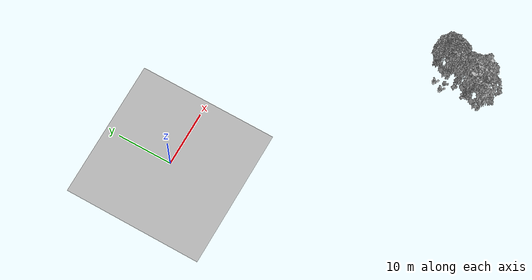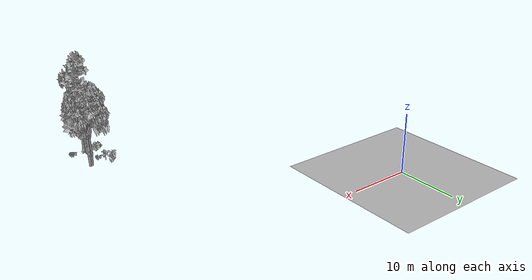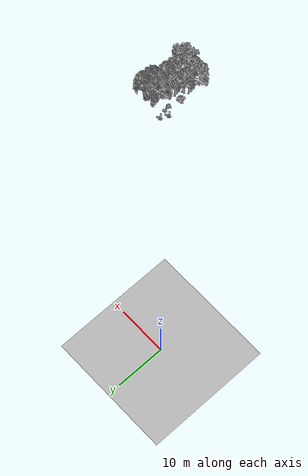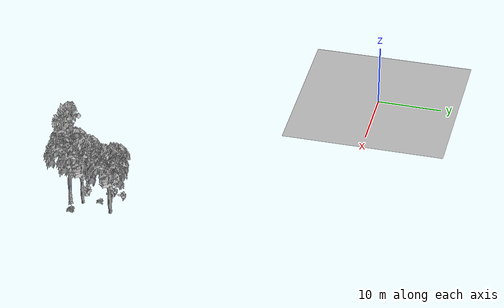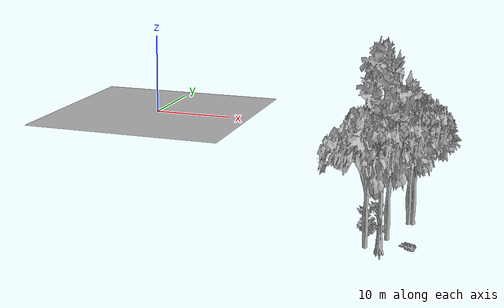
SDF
<sdf version="1.7">
 <world name="default">
  <model name="ground_plane">
   <static>1</static>
   <link name="link">
    <collision name="collision">
     <pose>-50 0 0 0 -0 0</pose>
     <geometry><plane><normal>0 0 1</normal><size>80 80</size></plane></geometry>
     <surface><contact><ode><min_depth>0.01</min_depth><max_vel>0</max_vel></ode></contact></surface>
    </collision>
    <visual name="grass">
     <cast_shadows>0</cast_shadows>
     <geometry>
      <mesh>
       <scale>0.46714285714285714 0.46714285714285714 0.1</scale>
       <uri>file://grass_plane/meshes/grass_plane.dae</uri>
      </mesh>
     </geometry>
    </visual>
   </link>
  </model>
  <model name="Tree 69">
   <static>1</static>
   <pose>36.234945103399 -39.33850696619105 0 1.57079 -0 0</pose>
   <link name="link">
    <collision name="collision">
     <geometry><mesh><scale>3.5 5 3.5</scale><uri>model://tree_9/meshes/tree_9.obj</uri></mesh></geometry>
    </collision>
    <visual name="visual">
     <geometry><mesh><scale>3.5 5 3.5</scale><uri>model://tree_9/meshes/tree_9.obj</uri></mesh></geometry>
    </visual>
   </link>
  </model>
  <model name="Tree 122">
   <static>1</static>
   <pose>37.52260356447661 -32.735231007567776 0 1.57079 -0 0</pose>
   <link name="link">
    <collision name="collision">
     <geometry><mesh><scale>3.5 5 3.5</scale><uri>model://tree_2/meshes/tree_2.obj</uri></mesh></geometry>
    </collision>
    <visual name="visual">
     <geometry><mesh><scale>3.5 5 3.5</scale><uri>model://tree_2/meshes/tree_2.obj</uri></mesh></geometry>
    </visual>
   </link>
  </model>
  <model name="Tree 242">
   <static>1</static>
   <pose>36.43001223709473 -37.31676216103352 0 1.57079 -0 0</pose>
   <link name="link">
    <collision name="collision">
     <geometry><mesh><scale>3.5 5 3.5</scale><uri>model://tree_2/meshes/tree_2.obj</uri></mesh></geometry>
    </collision>
    <visual name="visual">
     <geometry><mesh><scale>3.5 5 3.5</scale><uri>model://tree_2/meshes/tree_2.obj</uri></mesh></geometry>
    </visual>
   </link>
  </model>
  <model name="Tree 402">
   <static>1</static>
   <pose>37.89095227214982 -32.674486583663736 0 1.57079 -0 0</pose>
   <link name="link">
    <collision name="collision">
     <geometry><mesh><scale>3.5 5 3.5</scale><uri>model://tree_2/meshes/tree_2.obj</uri></mesh></geometry>
    </collision>
    <visual name="visual">
     <geometry><mesh><scale>3.5 5 3.5</scale><uri>model://tree_2/meshes/tree_2.obj</uri></mesh></geometry>
    </visual>
   </link>
  </model>
  <model name="Tree 533">
   <static>1</static>
   <pose>35.035863840929366 -39.720797524505016 0 1.57079 -0 0</pose>
   <link name="link">
    <collision name="collision">
     <geometry><mesh><scale>3.5 5 3.5</scale><uri>model://tree_2/meshes/tree_2.obj</uri></mesh></geometry>
    </collision>
    <visual name="visual">
     <geometry><mesh><scale>3.5 5 3.5</scale><uri>model://tree_2/meshes/tree_2.obj</uri></mesh></geometry>
    </visual>
   </link>
  </model>
  <model name="Bush 15">
   <static>1</static>
   <pose>35.03270136747848 -33.294159076901224 0 1.57079 -0 0</pose>
   <link name="link">
    <collision name="collision">
     <geometry><mesh><scale>2 2 2</scale><uri>model://bush_5/meshes/bush_5.obj</uri></mesh></geometry>
     <surface><contact><collide_without_contact>false</collide_without_contact></contact></surface>
    </collision>
    <visual name="visual">
     <geometry><mesh><scale>2 2 2</scale><uri>model://bush_5/meshes/bush_5.obj</uri></mesh></geometry>
    </visual>
   </link>
  </model>
  <model name="Bush 76">
   <static>1</static>
   <pose>38.62846827147638 -38.65328235525486 0 1.57079 -0 0</pose>
   <link name="link">
    <collision name="collision">
     <geometry><mesh><scale>2 2 2</scale><uri>model://bush_2/meshes/bush_2.obj</uri></mesh></geometry>
     <surface><contact><collide_without_contact>false</collide_without_contact></contact></surface>
    </collision>
    <visual name="visual">
     <geometry><mesh><scale>2 2 2</scale><uri>model://bush_2/meshes/bush_2.obj</uri></mesh></geometry>
    </visual>
   </link>
  </model>
  <model name="Bush 97">
   <static>1</static>
   <pose>35.60475361225494 -34.95445446969174 0 1.57079 -0 0</pose>
   <link name="link">
    <collision name="collision">
     <geometry><mesh><scale>2 2 2</scale><uri>model://bush_2/meshes/bush_2.obj</uri></mesh></geometry>
     <surface><contact><collide_without_contact>false</collide_without_contact></contact></surface>
    </collision>
    <visual name="visual">
     <geometry><mesh><scale>2 2 2</scale><uri>model://bush_2/meshes/bush_2.obj</uri></mesh></geometry>
    </visual>
   </link>
  </model>
  <model name="Bush 130">
   <static>1</static>
   <pose>34.791528235469826 -37.46441640463836 0 1.57079 -0 0</pose>
   <link name="link">
    <collision name="collision">
     <geometry><mesh><scale>2 2 2</scale><uri>model://bush_1/meshes/bush_1.obj</uri></mesh></geometry>
     <surface><contact><collide_without_contact>false</collide_without_contact></contact></surface>
    </collision>
    <visual name="visual">
     <geometry><mesh><scale>2 2 2</scale><uri>model://bush_1/meshes/bush_1.obj</uri></mesh></geometry>
    </visual>
   </link>
  </model>
  <model name="Bush 136">
   <static>1</static>
   <pose>34.69904912109959 -31.645097335677555 0 1.57079 -0 0</pose>
   <link name="link">
    <collision name="collision">
     <geometry><mesh><scale>2 2 2</scale><uri>model://bush_0/meshes/bush_0.obj</uri></mesh></geometry>
     <surface><contact><collide_without_contact>false</collide_without_contact></contact></surface>
    </collision>
    <visual name="visual">
     <geometry><mesh><scale>2 2 2</scale><uri>model://bush_0/meshes/bush_0.obj</uri></mesh></geometry>
    </visual>
   </link>
  </model>
  <model name="Bush 253">
   <static>1</static>
   <pose>38.36902296005562 -38.55720150416931 0 1.57079 -0 0</pose>
   <link name="link">
    <collision name="collision">
     <geometry><mesh><scale>2 2 2</scale><uri>model://bush_2/meshes/bush_2.obj</uri></mesh></geometry>
     <surface><contact><collide_without_contact>false</collide_without_contact></contact></surface>
    </collision>
    <visual name="visual">
     <geometry><mesh><scale>2 2 2</scale><uri>model://bush_2/meshes/bush_2.obj</uri></mesh></geometry>
    </visual>
   </link>
  </model>
  <model name="Bush 478">
   <static>1</static>
   <pose>33.952271883486205 -33.17273753200956 0 1.57079 -0 0</pose>
   <link name="link">
    <collision name="collision">
     <geometry><mesh><scale>2 2 2</scale><uri>model://bush_0/meshes/bush_0.obj</uri></mesh></geometry>
     <surface><contact><collide_without_contact>false</collide_without_contact></contact></surface>
    </collision>
    <visual name="visual">
     <geometry><mesh><scale>2 2 2</scale><uri>model://bush_0/meshes/bush_0.obj</uri></mesh></geometry>
    </visual>
   </link>
  </model>
 </world>
</sdf>
